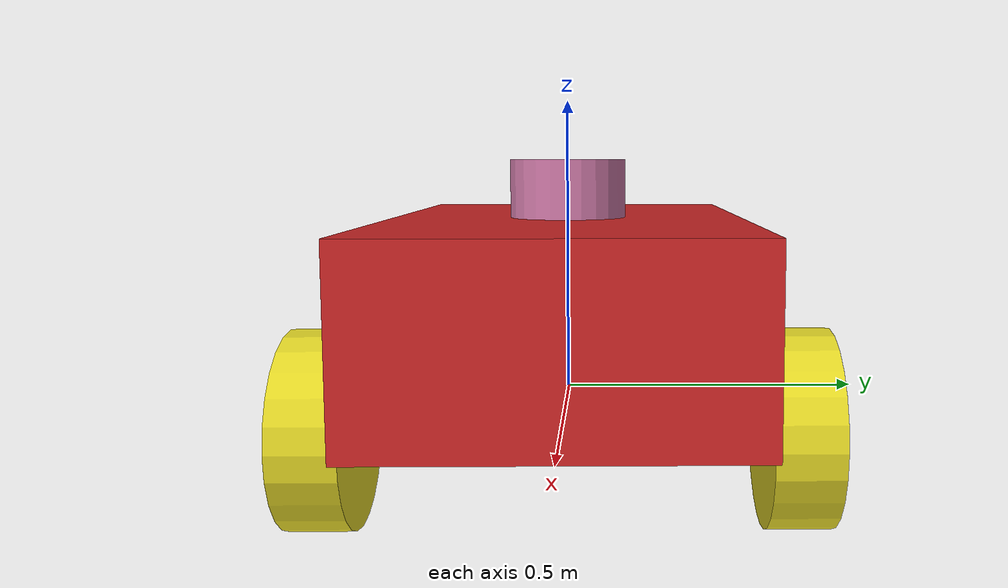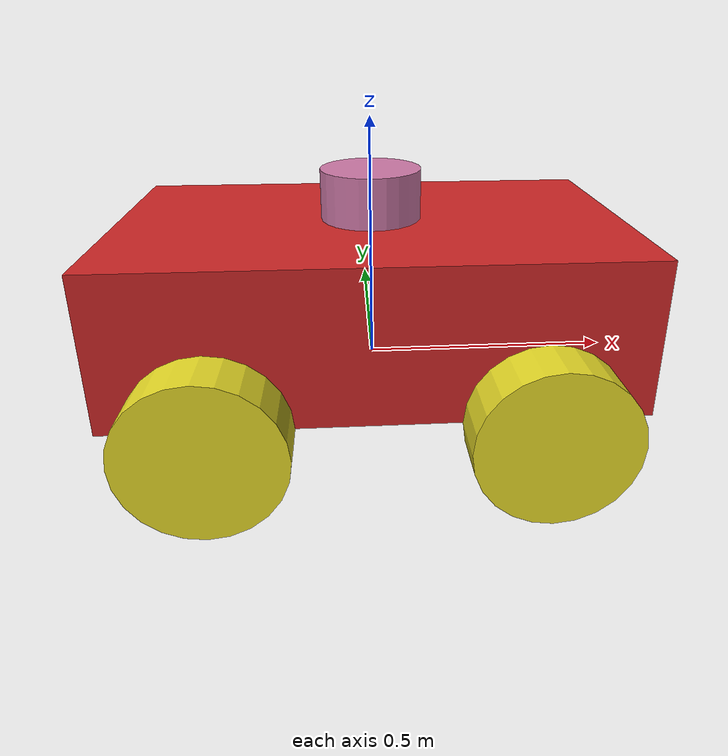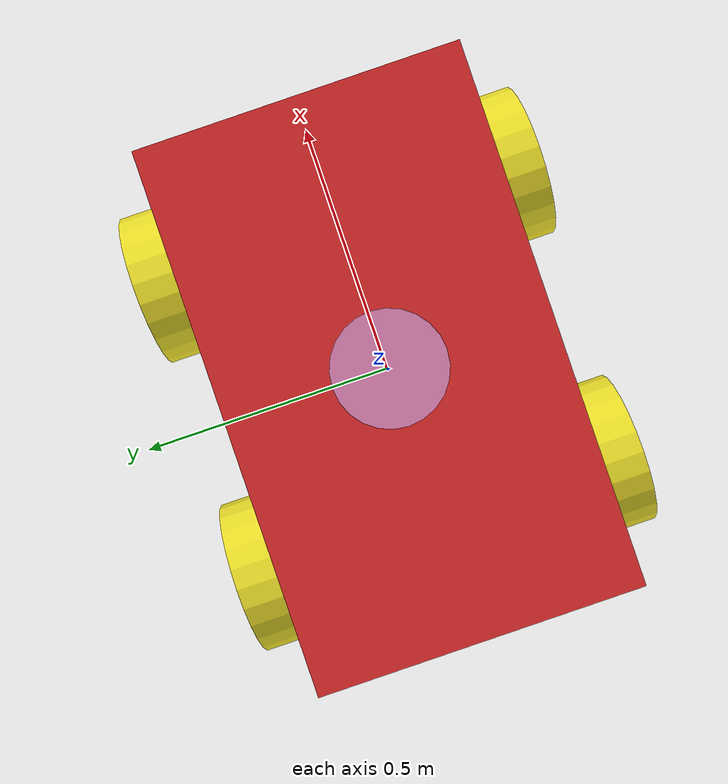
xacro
<?xml version='1.0'?>
<robot name = "castor_robot" xmlns:xacro="http://www.ros.org/wiki/xacro">
<!-- define constants -->

<xacro:property name = "ohm" value ="3.14159"/>

<!-- BODY LINK DIMENSIONS  -->
<!-- units used in meters -->

<xacro:property name = "body_length"
   value ="1.0"/>
<xacro:property name = "body_height"
   value ="0.30"/>
<xacro:property name = "body_width"
   value ="0.60"/>

<!-- WHEEL DIMENSIONS  AND CASTOR DIMENSIONS -->
<!-- RADIUS -->
<xacro:property name = "radius"
   value = "0.15"/>
<!-- WIDTH  WHEEL -->
<xacro:property name ="width"
   value ="0.10"/>
<xacro:property name ="wheel_z_location"
   value ="-0.1"/>

<!-- other dimensions -->
<xacro:property name = "s1"
   value = "${body_height/2 + radius}"/>
<xacro:property name = "s2"
   value ="${radius*2}"/>
<xacro:property name = "s3"
   value = "${radius*2}"/>
<xacro:property name = "s4"
   value ="${body_width/2 + width/2}"/>

<!-- MASS NAD INERTIA -->

<!-- DENSITY -->
<!-- BODY LINK -->
<xacro:property name = "body_link"
   value = "500.0"/>
<!-- WHEEL LINK -->
<xacro:property name = "wheel_link"
   value = "500.0"/>

<!-- MASS -->
<!-- BODY LINK MASS -->
<xacro:property name = "body_mass"
   value = "${body_link*body_length*body_width*body_height}"/>

<!-- WHEEL LINK MASS -->
<xacro:property name = "wheel_mass"
   value = "${wheel_link*ohm*radius*radius*width}"/>

<!--MOMENT OF INERTIA -->

<!-- BODY LINK MOMENT OF INERTIA -->
<xacro:property name = "Ix_body"
   value = "${(1/12)*body_mass*(body_height*body_height + body_width*body_width)}" />
<xacro:property name = "Iy_body"
   value = "${(1/12)*body_mass*(body_length*body_length + body_width*body_width)}" />
<xacro:property name = "Iz_body"
   value = "${(1/12)*body_mass*(body_length*body_length + body_height*body_height)}" />

<!-- WHEEL LINK MOMENT OF INERTIA -->
<xacro:property name="Ix_wheel"
   value="${(1/12)*wheel_mass*(3*radius*radius + width*width)}"/>

<xacro:property name="Iy_wheel"
   value="${(1/2)*wheel_mass*radius*radius}"/>

<xacro:property name="Iz_wheel"
   value="${(1/12)*wheel_mass*(3*radius*radius + width*width)}"/>

<!-- complete inertial system of the body -->
<!-- FILE THAT INCLUDES GAZEBO OPTIONS AND MOTION CONTROLS-->
<xacro:include filename ="$(find mobile_robot)/model/robot.gazebo.xacro"/>

<!-- THE BASIC COORDINATE SYSTEM IS CENTERED AT THE GEOMETRIC CENTER OF THE BODY LINK -->

<!-- BODY LINK -->
<xacro:macro name = "body_link_macro">
   <inertial>
   <origin xyz = " 0 0 ${radius}" rpy = "0 0 0"/>
   <mass value = "${body_mass}"/>
   <inertia ixx ="${Ix_body}" ixy = "0.0" ixz ="0.0" iyy ="${Iz_body}" iyz = "0.0" izz= "${Iy_body}"/>
   </inertial>
</xacro:macro>

<!-- WHEEL LINK -->
<xacro:macro name = "wheel_link_macro">
   <inertial>
   <origin xyz = "0 0 0" rpy = "0 0 0"/>
   <mass value = "${wheel_mass}"/>
   <inertia ixx ="${Ix_wheel}" ixy="0.0" ixz="0.0" iyy="${Iy_wheel}" iyz ="0.0" izz="${Iz_wheel}"/>
   </inertial>
</xacro:macro>

<!-- INERTFACE FOR COMTROLS -->

<!-- FICTOUS LINK  -->
<!-- DEFINING LINKS ANDS JOINTS -->
<link name  = "body_footprint"></link>
<joint name = "body_link_joint" type = "fixed">
   <parent link = "body_footprint"/>
   <child link = "body_link"/>
</joint>

<!-- BODY LINK OF ROBOT -->
<link name = "body_link">
   <visual>
      <geometry>
         <box size = "${body_length} ${body_width} ${body_height}"/>
      </geometry>
      <origin xyz="0 0 ${radius}" rpy = "0 0 0"/>
   </visual>

   <collision>
      <geometry>
         <box size = "${body_length} ${body_width} ${body_height}"/>
      </geometry>
      <origin xyz="0 0 ${radius}" rpy = "0 0 0"/>
   </collision>

   <xacro:body_link_macro/>
</link>

<!-- WHEEL JOINT -->
<joint name="wheel1_joint" type ="continuous">
   <parent link = "body_link"/>
   <child link = "wheel1_link"/>
   <origin xyz= " ${-s2} ${-s4} 0" rpy="0 0 0"/>
   <axis xyz= "0 1 0"/>
   <limit effort = "100000" velocity= "10"/>
   <dynamics damping ="1.0" friction ="1.0"/>
</joint>

<link name = "wheel1_link">
   <visual>
      <geometry>
         <cylinder length = "${width}" radius = "${radius}"/>
      </geometry>
      <origin xyz = "0 0 0" rpy = "1.570795 0 0"/>
   </visual>

   <collision>
      <geometry>
         <cylinder length = "${width}" radius = "${radius}"/>
      </geometry>
      <origin xyz = "0 0 0" rpy = "1.570795 0 0"/>
   </collision>

   <xacro:wheel_link_macro/>
</link>

<joint name="wheel2_joint" type ="continuous">
   <parent link = "body_link"/>
   <child link = "wheel2_link"/>
   <origin xyz= " ${-s2} ${s4} 0" rpy="0 0 0"/>
   <axis xyz= "0 1 0"/>
   <limit effort = "100000" velocity= "10"/>
   <dynamics damping ="1.0" friction ="1.0"/>
</joint>

<link name ="wheel2_link">
   <visual>
      <geometry>
         <cylinder length = "${width}" radius = "${radius}"/>
      </geometry>
      <origin xyz = "0 0 0" rpy = "1.570795 0 0"/>
   </visual>

   <collision>
      <geometry>
         <cylinder length = "${width}" radius = "${radius}"/>
      </geometry>
      <origin xyz = "0 0 0" rpy = "1.570795 0 0"/>
   </collision>

   <xacro:wheel_link_macro/>
</link>

<joint name="wheel3_joint" type="continuous">
   <parent link="body_link"/>
   <child link="wheel3_link"/>
   <origin xyz="${s2} ${-s4} 0" rpy="0 0 0"/>
   <axis xyz="0 1 0"/>
   <limit effort="100000" velocity="10"/>
   <dynamics damping="1.0" friction="1.0"/>
</joint>

<link name="wheel3_link">
   <visual>
      <geometry>
         <cylinder length="${width}" radius="${radius}"/>
      </geometry>
      <origin xyz="0 0 0" rpy="1.570795 0 0"/>
   </visual>
   <collision>
      <geometry>
         <cylinder length="${width}" radius="${radius}"/>
      </geometry>
      <origin xyz="0 0 0" rpy="1.570795 0 0"/>
   </collision>
   <xacro:wheel_link_macro/>
</link>

<joint name="wheel4_joint" type="continuous">
   <parent link="body_link"/>
   <child link="wheel4_link"/>
   <origin xyz="${s2} ${s4} 0" rpy="0 0 0"/>
   <axis xyz="0 1 0"/>
   <limit effort="100000" velocity="10"/>
   <dynamics damping="1.0" friction="1.0"/>
</joint>

<link name="wheel4_link">
   <visual>
      <geometry>
         <cylinder length="${width}" radius="${radius}"/>
      </geometry>
      <origin xyz="0 0 0" rpy="1.570795 0 0"/>
   </visual>
   <collision>
      <geometry>
         <cylinder length="${width}" radius="${radius}"/>
      </geometry>
      <origin xyz="0 0 0" rpy="1.570795 0 0"/>
   </collision>
   <xacro:wheel_link_macro/>
</link>

<!-- LIDAR -->

<joint name = "lidar_joint" type = "fixed">
   <origin xyz="0 0 0.35" rpy="0 0 0"/>
   <parent link="body_link"/>
   <child link="lidar_link"/>
   <axis xyz="0 1 0" rpy="0 0 0"/>
</joint>

<link name="lidar_link">
   <visual>
   <origin xyz="0 0 0" rpy="0 0 0"/>
      <geometry>
         <cylinder length ="0.1" radius="0.1"/>
      </geometry>
   </visual>

   <inertial>
      <mass value="1e-6"/>
      <origin xyz="0 0 0" rpy="0 0 0"/>
      <inertia ixx="1e-6" ixy="0" ixz="0" iyy="1e-6" iyz="0" izz="1e-6"/>
   </inertial>
</link>

</robot>
